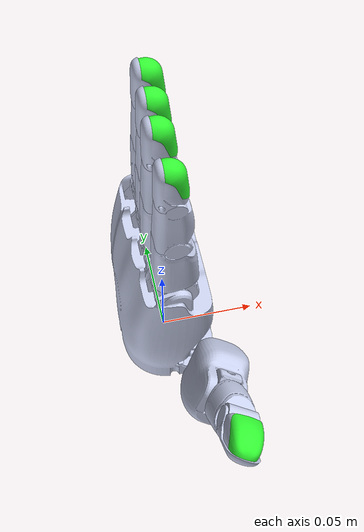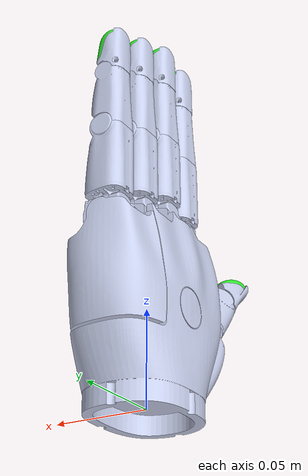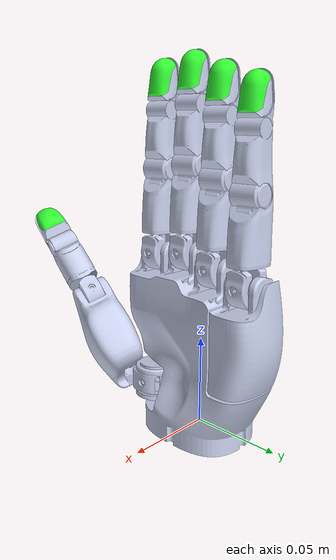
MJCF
<mujoco model="left_sharpa_wave">
  <compiler angle="radian" meshdir="assets/left/"/>

  <option integrator="implicitfast" impratio="10" cone="elliptic"/>

  <default>
    <default class="sharpa">
      <position inheritrange="1.0"/>
      <site size="0.0025 0.005 0.005" group="5" rgba="1 0 0 1"/>
      <default class="visual">
        <geom type="mesh" contype="0" conaffinity="0" group="2" density="0" material="silver"/>
        <default class="elastomer_visual">
          <geom material="green"/>
        </default>
      </default>
      <default class="collision">
        <geom type="mesh" group="3" density="0" solref="0.01" rgba="0.2 0.6 0.2 0.25"/>
        <default class="elastomer_collision">
          <geom solref="0.06 0.9"/>
        </default>
      </default>
      <default class="CMC_joint">
        <joint actuatorfrcrange="-3.3 3.3" armature="0.00451" damping="4.2e-05" frictionloss="0.132"/>
      </default>
      <default class="PCMC_joint">
        <joint actuatorfrcrange="-0.5285 0.5285" armature="0.000136" damping="4.2e-05" frictionloss="0.012"/>
      </default>
      <default class="MCP_joint">
        <joint actuatorfrcrange="-1.864 1.864" armature="0.00129" damping="2.38e-05" frictionloss="0.07456"/>
      </default>
      <default class="PIP_joint">
        <joint actuatorfrcrange="-0.638 0.638" armature="0.000415" damping="4.06e-06" frictionloss="0.01276"/>
      </default>
      <default class="DIP_joint">
        <joint actuatorfrcrange="-0.189369 0.189369" armature="2.42e-05" damping="1.21e-06" frictionloss="0.00378738"/>
      </default>
    </default>
  </default>

  <asset>
    <material name="silver" rgba="0.79 0.82 0.93 1"/>
    <material name="green" rgba="0.2 1 0.2 1"/>

    <mesh name="left_hand_C_MC_visual" file="left_hand_C_MC_visual.STL"/>
    <mesh name="left_hand_C_MC" file="left_hand_C_MC.STL"/>
    <mesh name="left_thumb_CMC_VL" file="left_thumb_CMC_VL.STL"/>
    <mesh name="left_thumb_MC_visual" file="left_thumb_MC_visual.STL"/>
    <mesh name="left_thumb_MC" file="left_thumb_MC.STL"/>
    <mesh name="left_thumb_MCP_VL_visual" file="left_thumb_MCP_VL_visual.STL"/>
    <mesh name="left_thumb_PP_visual" file="left_thumb_PP_visual.STL"/>
    <mesh name="left_thumb_PP" file="left_thumb_PP.STL"/>
    <mesh name="DP_Visual_HB1_TH" file="DP_Visual_HB1_TH.STL"/>
    <mesh name="DP_HB1_TH" file="DP_HB1_TH.STL"/>
    <mesh name="elastomer_HB1_TH" file="elastomer_HB1_TH.STL"/>
    <mesh name="left_MCP_VL_visual" file="left_MCP_VL_visual.STL"/>
    <mesh name="MCP_VL" file="MCP_VL.STL"/>
    <mesh name="left_PP_visual" file="left_PP_visual.STL"/>
    <mesh name="left_PP" file="left_PP.STL"/>
    <mesh name="left_MP_visual" file="left_MP_visual.STL"/>
    <mesh name="left_MP" file="left_MP.STL"/>
    <mesh name="DP_visual_HB1_4F" file="DP_visual_HB1_4F.STL"/>
    <mesh name="DP_HB1_4F" file="DP_HB1_4F.STL"/>
    <mesh name="elastomer_HB1_4F" file="elastomer_HB1_4F.STL"/>
    <mesh name="left_pinky_MC_visual" file="left_pinky_MC_visual.STL"/>
    <mesh name="left_pinky_MC" file="left_pinky_MC.STL"/>
    <mesh name="palm000" file="palm/palm000.obj"/>
    <mesh name="palm001" file="palm/palm001.obj"/>
    <mesh name="palm002" file="palm/palm002.obj"/>
    <mesh name="palm003" file="palm/palm003.obj"/>
    <mesh name="palm004" file="palm/palm004.obj"/>
    <mesh name="palm005" file="palm/palm005.obj"/>
    <mesh name="palm006" file="palm/palm006.obj"/>
    <mesh name="palm007" file="palm/palm007.obj"/>
    <mesh name="palm008" file="palm/palm008.obj"/>
    <mesh name="palm009" file="palm/palm009.obj"/>
    <mesh name="palm010" file="palm/palm010.obj"/>
    <mesh name="palm011" file="palm/palm011.obj"/>
    <mesh name="palm012" file="palm/palm012.obj"/>
    <mesh name="palm013" file="palm/palm013.obj"/>
    <mesh name="palm014" file="palm/palm014.obj"/>
    <mesh name="palm015" file="palm/palm015.obj"/>
    <mesh name="palm016" file="palm/palm016.obj"/>
    <mesh name="palm017" file="palm/palm017.obj"/>
    <mesh name="palm018" file="palm/palm018.obj"/>
    <mesh name="palm019" file="palm/palm019.obj"/>
    <mesh name="palm020" file="palm/palm020.obj"/>
    <mesh name="palm021" file="palm/palm021.obj"/>
    <mesh name="palm022" file="palm/palm022.obj"/>
    <mesh name="palm023" file="palm/palm023.obj"/>
    <mesh name="palm024" file="palm/palm024.obj"/>
    <mesh name="palm025" file="palm/palm025.obj"/>
    <mesh name="palm026" file="palm/palm026.obj"/>
    <mesh name="palm027" file="palm/palm027.obj"/>
    <mesh name="palm028" file="palm/palm028.obj"/>
    <mesh name="palm029" file="palm/palm029.obj"/>
    <mesh name="palm030" file="palm/palm030.obj"/>
    <mesh name="palm031" file="palm/palm031.obj"/>
  </asset>

  <worldbody>
    <body name="left_hand_C_MC" childclass="sharpa">
      <geom name="left_hand_C_MC_visual" class="visual" mass="0.72045" mesh="left_hand_C_MC_visual"/>
      <geom name="palm000_collision" class="collision" mesh="palm000"/>
      <geom name="palm001_collision" class="collision" mesh="palm001"/>
      <geom name="palm002_collision" class="collision" mesh="palm002"/>
      <geom name="palm003_collision" class="collision" mesh="palm003"/>
      <geom name="palm004_collision" class="collision" mesh="palm004"/>
      <geom name="palm005_collision" class="collision" mesh="palm005"/>
      <geom name="palm006_collision" class="collision" mesh="palm006"/>
      <geom name="palm007_collision" class="collision" mesh="palm007"/>
      <geom name="palm008_collision" class="collision" mesh="palm008"/>
      <geom name="palm009_collision" class="collision" mesh="palm009"/>
      <geom name="palm010_collision" class="collision" mesh="palm010"/>
      <geom name="palm011_collision" class="collision" mesh="palm011"/>
      <geom name="palm012_collision" class="collision" mesh="palm012"/>
      <geom name="palm013_collision" class="collision" mesh="palm013"/>
      <geom name="palm014_collision" class="collision" mesh="palm014"/>
      <geom name="palm015_collision" class="collision" mesh="palm015"/>
      <geom name="palm016_collision" class="collision" mesh="palm016"/>
      <geom name="palm017_collision" class="collision" mesh="palm017"/>
      <geom name="palm018_collision" class="collision" mesh="palm018"/>
      <geom name="palm019_collision" class="collision" mesh="palm019"/>
      <geom name="palm020_collision" class="collision" mesh="palm020"/>
      <geom name="palm021_collision" class="collision" mesh="palm021"/>
      <geom name="palm022_collision" class="collision" mesh="palm022"/>
      <geom name="palm023_collision" class="collision" mesh="palm023"/>
      <geom name="palm024_collision" class="collision" mesh="palm024"/>
      <geom name="palm025_collision" class="collision" mesh="palm025"/>
      <geom name="palm026_collision" class="collision" mesh="palm026"/>
      <geom name="palm027_collision" class="collision" mesh="palm027"/>
      <geom name="palm028_collision" class="collision" mesh="palm028"/>
      <geom name="palm029_collision" class="collision" mesh="palm029"/>
      <geom name="palm030_collision" class="collision" mesh="palm030"/>
      <geom name="palm031_collision" class="collision" mesh="palm031"/>
      <site name="wrist_site" pos="0 0 0"/>
      <body name="left_thumb_CMC_VL" pos="0.01 -0.026 0.0214" quat="0.707105 0 0 -0.707108">
        <inertial pos="-0.00065 -0.0002 0" quat="0.557664 0.434754 -0.557664 0.434754" mass="0.0025"
          diaginertia="2.6e-07 2.12661e-07 1.34339e-07"/>
        <joint name="left_thumb_CMC_FE" class="CMC_joint" pos="0 0 0" axis="0 0 1" range="-0.1745 1.9199"/>
        <geom class="visual" mesh="left_thumb_CMC_VL"/>
        <geom name="left_thumb_CMC_VL_fit" size="0.0120419 0.00625" pos="0.000957197 0.000412167 1.20218e-10"
          type="cylinder" group="3" rgba="0.2 0.6 0.2 0.35"/>
        <body name="left_thumb_MC" pos="0 -0.005 0" quat="0.65328 0.653282 -0.270598 0.270599">
          <inertial pos="0.03643 -0.01024 -0.00517" quat="0.154462 0.683763 0.151259 0.696943" mass="0.13587"
            diaginertia="4.69153e-05 4.29066e-05 1.92101e-05"/>
          <joint name="left_thumb_CMC_AA" class="CMC_joint" pos="0 0 0" axis="0 0 1" range="-0.3491 0.3491"/>
          <geom class="visual" mesh="left_thumb_MC_visual"/>
          <geom name="left_thumb_MC_fit" size="0.0207081 0.0169273" pos="0.0397656 -0.0106861 -0.0110947"
            quat="0.707107 0 0.707107 0" type="capsule" group="3" rgba="0.2 0.6 0.2 0.35"/>
          <body name="left_thumb_MCP_VL" pos="0.065 -0.006 -0.010392" quat="0.965926 -0.25882 0 0">
            <joint name="left_thumb_MCP_FE" class="MCP_joint" pos="0 0 0" axis="0 0 1" range="-0.5236 1.3963"/>
            <geom class="visual" mass="8e-05" mesh="left_thumb_MCP_VL_visual"/>
            <body name="left_thumb_PP" quat="0.707105 0.707108 0 0">
              <inertial pos="0.021256 -0.00095 0.00092" quat="0.511613 0.44358 0.554609 0.483631" mass="0.03078"
                diaginertia="6.08344e-06 5.91207e-06 1.22148e-06"/>
              <joint name="left_thumb_MCP_AA" class="MCP_joint" pos="0 0 0" axis="0 0 1" range="-0.3491 0.3491"/>
              <geom class="visual" mesh="left_thumb_PP_visual"/>
              <geom name="left_thumb_PP_fit" size="0.011707 0.0137066" pos="0.0237179 -8.06477e-10 0.0012143"
                quat="0.707107 0 0.707107 0" type="capsule" group="3" rgba="0.2 0.6 0.2 0.35"/>
              <body name="left_thumb_DP" pos="0.039 0 0" quat="0.707105 -0.707108 0 0">
                <inertial pos="0.00823663 -0.00178196 -0.00099988" quat="-0.255956 0.713878 -0.187417 0.624291"
                  mass="0.00998" diaginertia="1.09014e-06 1.041e-06 2.95174e-07"/>
                <joint name="left_thumb_IP" class="PIP_joint" pos="0 0 0" axis="0 0 1" range="0 1.7453"/>
                <geom class="visual" mesh="DP_Visual_HB1_TH"/>
                <geom class="visual" quat="0.5 0.5 -0.5 0.5" material="green" mesh="elastomer_HB1_TH"/>
                <geom name="left_thumb_fingertip_collision" class="elastomer_collision" size="0.00943065 0.00677499"
                  pos="0.0163733 -0.00176519 2.7474e-08" quat="0.508797 0.508797 0.491045 0.491045" type="capsule"/>
                <site name="left_thumb_fingertip" pos="0.0276109 0 0" quat="0.5 0.5 0.5 0.5"/>
              </body>
            </body>
          </body>
        </body>
      </body>
      <body name="left_index_MCP_VL" pos="0.001 -0.0303 0.0959" quat="0.499998 -0.500002 -0.5 -0.5">
        <inertial pos="-0.0092 -0.0013 0" quat="0.479506 0.519686 -0.479506 0.519686" mass="0.00221"
          diaginertia="2.23e-07 1.77435e-07 1.09965e-07"/>
        <joint name="left_index_MCP_FE" class="MCP_joint" pos="0 0 0" axis="0 0 1" range="-0.174533 1.5708"/>
        <geom class="visual" mesh="left_MCP_VL_visual"/>
        <geom name="left_index_MCP_VL_fit" size="0.0125535 0.0057" pos="0.00165159 0.00045 1.0897e-10" type="cylinder"
          group="3" rgba="0.2 0.6 0.2 0.35"/>
        <body name="left_index_PP" quat="0.707105 0.707108 0 0">
          <inertial pos="0.027 -0.00055 -0.00068" quat="0.502719 0.479286 0.512565 0.504813" mass="0.04741"
            diaginertia="1.14061e-05 1.10467e-05 2.15425e-06"/>
          <joint name="left_index_MCP_AA" class="MCP_joint" pos="0 0 0" axis="0 0 1" range="-0.3491 0.3491"/>
          <geom class="visual" mesh="left_PP_visual"/>
          <geom name="left_index_PP_fit" size="0.0104766 0.0172474" pos="0.0305371 8.5591e-06 0.000140714"
            quat="0.707107 0 0.707107 0" type="capsule" group="3" rgba="0.2 0.6 0.2 0.35"/>
          <body name="left_index_MP" pos="0.047 0 0" quat="0.707105 -0.707108 0 0">
            <inertial pos="0.01212 -0.00116 0.00058" quat="-0.0266408 0.732558 -0.0189273 0.67992" mass="0.01824"
              diaginertia="2.00683e-06 1.9229e-06 5.68878e-07"/>
            <joint name="left_index_PIP" class="PIP_joint" pos="0 0 0" axis="0 0 1" range="0 1.7453"/>
            <geom class="visual" mesh="left_MP_visual"/>
            <geom name="left_index_MP_fit" size="0.0104174 0.0147236" pos="0.0147146 -0.00118535 -4.70523e-07"
              quat="0.707107 0 0.707107 0" type="capsule" group="3" rgba="0.2 0.6 0.2 0.35"/>
            <body name="left_index_DP" pos="0.0315 0 0">
              <inertial pos="0.0124856 -0.00257344 -0.000107634" quat="-0.0491898 0.71664 -0.0584115 0.69325"
                mass="0.00465" diaginertia="3.15145e-07 3.09574e-07 1.34852e-07"/>
              <joint name="left_index_DIP" class="DIP_joint" pos="0 0 0" axis="0 0 1" range="0 1.3963"/>
              <geom class="visual" mesh="DP_visual_HB1_4F"/>
              <geom class="visual" quat="0.5 0.5 -0.5 0.5" material="green" mesh="elastomer_HB1_4F"/>
              <geom name="left_index_fingertip_collision" class="elastomer_collision" size="0.00806303 0.00535098"
                pos="0.0139214 -0.00086892 -1.32248e-06" quat="-0.0228873 0.706736 0.0228873 0.706736" type="capsule"/>
              <site name="left_index_fingertip" pos="0.0260093 0 0" quat="0.5 0.5 0.5 0.5"/>
            </body>
          </body>
        </body>
      </body>
      <body name="left_middle_MCP_VL" pos="0 -0.01 0.0989" quat="0.499998 -0.500002 -0.5 -0.5">
        <inertial pos="-0.0092 -0.0013 0" quat="0.479506 0.519686 -0.479506 0.519686" mass="0.00221"
          diaginertia="2.23e-07 1.77435e-07 1.09965e-07"/>
        <joint name="left_middle_MCP_FE" class="MCP_joint" pos="0 0 0" axis="0 0 1" range="-0.174533 1.5708"/>
        <geom class="visual" mesh="left_MCP_VL_visual"/>
        <geom name="left_middle_MCP_VL_fit" size="0.0125535 0.0057" pos="0.00165159 0.00045 1.0897e-10" type="cylinder"
          group="3" rgba="0.2 0.6 0.2 0.35"/>
        <body name="left_middle_PP" quat="0.707105 0.707108 0 0">
          <inertial pos="0.027 -0.00055 -0.00068" quat="0.502719 0.479286 0.512565 0.504813" mass="0.04741"
            diaginertia="1.14061e-05 1.10467e-05 2.15425e-06"/>
          <joint name="left_middle_MCP_AA" class="MCP_joint" pos="0 0 0" axis="0 0 1" range="-0.3491 0.3491"/>
          <geom class="visual" mesh="left_PP_visual"/>
          <geom name="left_middle_PP_fit" size="0.00934798 0.0172474" pos="0.0305371 8.5591e-06 0.000140714"
            quat="0.707107 0 0.707107 0" type="capsule" group="3" rgba="0.2 0.6 0.2 0.35"/>
          <body name="left_middle_MP" pos="0.047 0 0" quat="0.707105 -0.707108 0 0">
            <inertial pos="0.01212 -0.00116 0.00058" quat="-0.0266408 0.732558 -0.0189273 0.67992" mass="0.01824"
              diaginertia="2.00683e-06 1.9229e-06 5.68878e-07"/>
            <joint name="left_middle_PIP" class="PIP_joint" pos="0 0 0" axis="0 0 1" range="0 1.7453"/>
            <geom class="visual" mesh="left_MP_visual"/>
            <geom name="left_middle_MP_fit" size="0.00940724 0.0147236" pos="0.0147146 -0.00118535 -4.70523e-07"
              quat="0.707107 0 0.707107 0" type="capsule" group="3" rgba="0.2 0.6 0.2 0.35"/>
            <body name="left_middle_DP" pos="0.0315 0 0">
              <inertial pos="0.0124856 -0.00257344 -0.000107634" quat="-0.0491898 0.71664 -0.0584115 0.69325"
                mass="0.00465" diaginertia="3.15145e-07 3.09574e-07 1.34852e-07"/>
              <joint name="left_middle_DIP" class="DIP_joint" pos="0 0 0" axis="0 0 1" range="0 1.3963"/>
              <geom class="visual" mesh="DP_visual_HB1_4F"/>
              <geom class="visual" quat="0.5 0.5 -0.5 0.5" material="green" mesh="elastomer_HB1_4F"/>
              <geom name="left_middle_fingertip_collision" class="elastomer_collision" size="0.00806303 0.00535098"
                pos="0.0139214 -0.00086892 -1.32248e-06" quat="-0.0228873 0.706736 0.0228873 0.706736" type="capsule"/>
              <site name="left_middle_fingertip" pos="0.0260093 0 0" quat="0.5 0.5 0.5 0.5"/>
            </body>
          </body>
        </body>
      </body>
      <body name="left_ring_MCP_VL" pos="0.0015 0.0103 0.0929" quat="0.499998 -0.500002 -0.5 -0.5">
        <inertial pos="-0.0092 -0.0013 0" quat="0.479506 0.519686 -0.479506 0.519686" mass="0.00221"
          diaginertia="2.23e-07 1.77435e-07 1.09965e-07"/>
        <joint name="left_ring_MCP_FE" class="MCP_joint" pos="0 0 0" axis="0 0 1" range="-0.174533 1.5708"/>
        <geom class="visual" mesh="left_MCP_VL_visual"/>
        <geom name="left_ring_MCP_VL_fit" size="0.0125535 0.0057" pos="0.00165159 0.00045 1.0897e-10" type="cylinder"
          group="3" rgba="0.2 0.6 0.2 0.35"/>
        <body name="left_ring_PP" quat="0.707105 0.707108 0 0">
          <inertial pos="0.027 -0.00055 -0.00068" quat="0.502719 0.479286 0.512565 0.504813" mass="0.04741"
            diaginertia="1.14061e-05 1.10467e-05 2.15425e-06"/>
          <joint name="left_ring_MCP_AA" class="MCP_joint" pos="0 0 0" axis="0 0 1" range="-0.3491 0.3491"/>
          <geom class="visual" mesh="left_PP_visual"/>
          <geom name="left_ring_PP_fit" size="0.00970157 0.0172474" pos="0.0305371 8.5591e-06 0.000140714"
            quat="0.707107 0 0.707107 0" type="capsule" group="3" rgba="0.2 0.6 0.2 0.35"/>
          <body name="left_ring_MP" pos="0.047 0 0" quat="0.707105 -0.707108 0 0">
            <inertial pos="0.01212 -0.00116 0.00058" quat="-0.0266408 0.732558 -0.0189273 0.67992" mass="0.01824"
              diaginertia="2.00683e-06 1.9229e-06 5.68878e-07"/>
            <joint name="left_ring_PIP" class="PIP_joint" pos="0 0 0" axis="0 0 1" range="0 1.7453"/>
            <geom class="visual" mesh="left_MP_visual"/>
            <geom name="left_ring_MP_fit" size="0.0104481 0.0147236" pos="0.0147146 -0.00118535 -4.70523e-07"
              quat="0.707107 0 0.707107 0" type="capsule" group="3" rgba="0.2 0.6 0.2 0.35"/>
            <body name="left_ring_DP" pos="0.0315 0 0">
              <inertial pos="0.0124856 -0.00257344 -0.000107634" quat="-0.0491898 0.71664 -0.0584115 0.69325"
                mass="0.00465" diaginertia="3.15145e-07 3.09574e-07 1.34852e-07"/>
              <joint name="left_ring_DIP" class="DIP_joint" pos="0 0 0" axis="0 0 1" range="0 1.3963"/>
              <geom class="visual" mesh="DP_visual_HB1_4F"/>
              <geom class="visual" quat="0.499998 0.5 -0.5 0.500002" material="green" mesh="elastomer_HB1_4F"/>
              <geom name="left_ring_fingertip_collision" class="elastomer_collision" size="0.00806303 0.00535098"
                pos="0.0139214 -0.00086892 -1.32248e-06" quat="-0.0228873 0.706736 0.0228873 0.706736" type="capsule"/>
              <site name="left_ring_fingertip" pos="0.0260093 1.04037e-07 1.04037e-07"
                quat="0.5 0.499998 0.5 0.500002"/>
            </body>
          </body>
        </body>
      </body>
      <body name="left_pinky_MC" pos="0.01136 0.0263 0.0869" quat="1.34924e-11 3.67321e-06 -1 -3.67321e-06">
        <joint name="left_pinky_CMC" class="PCMC_joint" pos="0 0 0" axis="0 0 1" range="0 0.2618"/>
        <geom class="visual" mass="0.12541" mesh="left_pinky_MC_visual"/>
        <geom class="collision" mesh="left_pinky_MC"/>
        <body name="left_pinky_MCP_VL" pos="0.00836 0.0048 0" quat="0.499998 -0.5 0.5 0.500002">
          <inertial pos="-0.0092 -0.0013 0" quat="0.479506 0.519686 -0.479506 0.519686" mass="0.00221"
            diaginertia="2.23e-07 1.77435e-07 1.09965e-07"/>
          <joint name="left_pinky_MCP_FE" class="MCP_joint" pos="0 0 0" axis="0 0 1" range="-0.174533 1.5708"/>
          <geom class="visual" mesh="left_MCP_VL_visual"/>
          <geom name="left_pinky_MCP_VL_fit" size="0.0125535 0.0057" pos="0.00165159 0.00045 1.0897e-10" type="cylinder"
            group="3" rgba="0.2 0.6 0.2 0.35"/>
          <body name="left_pinky_PP" quat="0.707105 0.707108 0 0">
            <inertial pos="0.027 -0.00055 -0.00068" quat="0.502719 0.479286 0.512565 0.504813" mass="0.04741"
              diaginertia="1.14061e-05 1.10467e-05 2.15425e-06"/>
            <joint name="left_pinky_MCP_AA" class="MCP_joint" pos="0 0 0" axis="0 0 1" range="-0.3491 0.3491"/>
            <geom class="visual" mesh="left_PP_visual"/>
            <geom name="left_pinky_PP_fit" size="0.0106522 0.0172474" pos="0.0305371 8.5591e-06 0.000140714"
              quat="0.707107 0 0.707107 0" type="capsule" group="3" rgba="0.2 0.6 0.2 0.35"/>
            <body name="left_pinky_MP" pos="0.047 0 0" quat="0.707105 -0.707108 0 0">
              <inertial pos="0.01212 -0.00116 0.00058" quat="-0.0266408 0.732558 -0.0189273 0.67992" mass="0.01824"
                diaginertia="2.00683e-06 1.9229e-06 5.68878e-07"/>
              <joint name="left_pinky_PIP" class="PIP_joint" pos="0 0 0" axis="0 0 1" range="0 1.7453"/>
              <geom class="visual" mesh="left_MP_visual"/>
              <geom name="left_pinky_MP_fit" size="0.00990499 0.0147236" pos="0.0147146 -0.00118535 -4.70523e-07"
                quat="0.707107 0 0.707107 0" type="capsule" group="3" rgba="0.2 0.6 0.2 0.35"/>
              <body name="left_pinky_DP" pos="0.0315 0 0">
                <inertial pos="0.0124856 -0.00257344 -0.000107634" quat="-0.0491898 0.71664 -0.0584115 0.69325"
                  mass="0.00465" diaginertia="3.15145e-07 3.09574e-07 1.34852e-07"/>
                <joint name="left_pinky_DIP" class="DIP_joint" pos="0 0 0" axis="0 0 1" range="0 1.3963"/>
                <geom class="visual" mesh="DP_visual_HB1_4F"/>
                <geom class="visual" quat="0.5 0.5 -0.5 0.5" material="green" mesh="elastomer_HB1_4F"/>
                <geom name="left_pinky_fingertip_collision" class="elastomer_collision" size="0.00806303 0.00535098"
                  pos="0.0139214 -0.00086892 -1.32248e-06" quat="-0.0228873 0.706736 0.0228873 0.706736"
                  type="capsule"/>
                <site name="left_pinky_fingertip" pos="0.0260093 0 0" quat="0.5 0.5 0.5 0.5"/>
              </body>
            </body>
          </body>
        </body>
      </body>
    </body>
  </worldbody>

  <contact>
    <exclude body1="left_hand_C_MC" body2="left_thumb_CMC_VL"/>
    <exclude body1="left_hand_C_MC" body2="left_thumb_MC"/>
    <exclude body1="left_hand_C_MC" body2="left_index_MCP_VL"/>
    <exclude body1="left_hand_C_MC" body2="left_middle_MCP_VL"/>
    <exclude body1="left_hand_C_MC" body2="left_ring_MCP_VL"/>
    <exclude body1="left_hand_C_MC" body2="left_pinky_MC"/>
    <exclude body1="left_hand_C_MC" body2="left_pinky_MCP_VL"/>
    <exclude body1="left_thumb_CMC_VL" body2="left_thumb_MC"/>
    <exclude body1="left_thumb_MC" body2="left_thumb_PP"/>
    <exclude body1="left_thumb_PP" body2="left_thumb_DP"/>
    <exclude body1="left_index_MCP_VL" body2="left_index_PP"/>
    <exclude body1="left_index_MCP_VL" body2="left_middle_MCP_VL"/>
    <exclude body1="left_index_PP" body2="left_index_MP"/>
    <exclude body1="left_index_MP" body2="left_index_DP"/>
    <exclude body1="left_middle_MCP_VL" body2="left_middle_PP"/>
    <exclude body1="left_middle_MCP_VL" body2="left_ring_MCP_VL"/>
    <exclude body1="left_middle_PP" body2="left_middle_MP"/>
    <exclude body1="left_middle_MP" body2="left_middle_DP"/>
    <exclude body1="left_ring_MCP_VL" body2="left_ring_PP"/>
    <exclude body1="left_ring_MCP_VL" body2="left_pinky_MCP_VL"/>
    <exclude body1="left_ring_PP" body2="left_ring_MP"/>
    <exclude body1="left_ring_MP" body2="left_ring_DP"/>
    <exclude body1="left_pinky_MC" body2="left_pinky_MCP_VL"/>
    <exclude body1="left_pinky_MCP_VL" body2="left_pinky_PP"/>
    <exclude body1="left_pinky_PP" body2="left_pinky_MP"/>
    <exclude body1="left_pinky_MP" body2="left_pinky_DP"/>
  </contact>

  <actuator>
    <position class="sharpa" name="left_thumb_CMC_FE" joint="left_thumb_CMC_FE" kp="6.95" dampratio="0.9"/>
    <position class="sharpa" name="left_thumb_CMC_AA" joint="left_thumb_CMC_AA" kp="13.2" dampratio="0.9"/>
    <position class="sharpa" name="left_thumb_MCP_FE" joint="left_thumb_MCP_FE" kp="4.76" dampratio="0.9"/>
    <position class="sharpa" name="left_thumb_MCP_AA" joint="left_thumb_MCP_AA" kp="6.62" dampratio="0.9"/>
    <position class="sharpa" name="left_thumb_IP" joint="left_thumb_IP" kp="0.9" dampratio="0.9"/>
    <position class="sharpa" name="left_index_MCP_FE" joint="left_index_MCP_FE" kp="4.76" dampratio="0.9"/>
    <position class="sharpa" name="left_index_MCP_AA" joint="left_index_MCP_AA" kp="6.62" dampratio="0.9"/>
    <position class="sharpa" name="left_index_PIP" joint="left_index_PIP" kp="0.9" dampratio="0.9"/>
    <position class="sharpa" name="left_index_DIP" joint="left_index_DIP" kp="0.9" dampratio="0.9"/>
    <position class="sharpa" name="left_middle_MCP_FE" joint="left_middle_MCP_FE" kp="4.76" dampratio="0.9"/>
    <position class="sharpa" name="left_middle_MCP_AA" joint="left_middle_MCP_AA" kp="6.62" dampratio="0.9"/>
    <position class="sharpa" name="left_middle_PIP" joint="left_middle_PIP" kp="0.9" dampratio="0.9"/>
    <position class="sharpa" name="left_middle_DIP" joint="left_middle_DIP" kp="0.9" dampratio="0.9"/>
    <position class="sharpa" name="left_ring_MCP_FE" joint="left_ring_MCP_FE" kp="4.76" dampratio="0.9"/>
    <position class="sharpa" name="left_ring_MCP_AA" joint="left_ring_MCP_AA" kp="6.62" dampratio="0.9"/>
    <position class="sharpa" name="left_ring_PIP" joint="left_ring_PIP" kp="0.9" dampratio="0.9"/>
    <position class="sharpa" name="left_ring_DIP" joint="left_ring_DIP" kp="0.9" dampratio="0.9"/>
    <position class="sharpa" name="left_pinky_CMC" joint="left_pinky_CMC" kp="1.38" dampratio="0.9"/>
    <position class="sharpa" name="left_pinky_MCP_FE" joint="left_pinky_MCP_FE" kp="4.76" dampratio="0.9"/>
    <position class="sharpa" name="left_pinky_MCP_AA" joint="left_pinky_MCP_AA" kp="6.62" dampratio="0.9"/>
    <position class="sharpa" name="left_pinky_PIP" joint="left_pinky_PIP" kp="0.9" dampratio="0.9"/>
    <position class="sharpa" name="left_pinky_DIP" joint="left_pinky_DIP" kp="0.9" dampratio="0.9"/>
  </actuator>
</mujoco>
